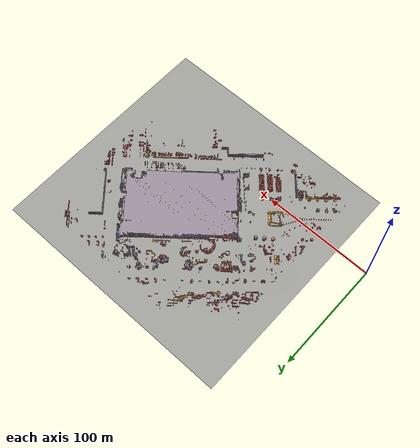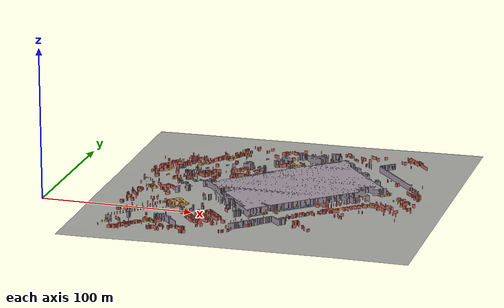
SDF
<sdf version="1.9">
 <world name="tsukuba_kakunin">
  <physics name="1ms" type="ignored">
   <max_step_size>0.001</max_step_size>
   <real_time_factor>1.0</real_time_factor>
   <gravity>0 0 -9.8</gravity>
  </physics>
  <plugin filename="libignition-gazebo-physics-system.so" name="ignition::gazebo::systems::Physics"/>
  <plugin filename="libignition-gazebo-user-commands-system.so" name="ignition::gazebo::systems::UserCommands"/>
  <plugin filename="libignition-gazebo-scene-broadcaster-system.so" name="ignition::gazebo::systems::SceneBroadcaster"/>
  <plugin filename="libignition-gazebo-sensors-system.so" name="ignition::gazebo::systems::Sensors">
   <render_engine>ogre2</render_engine>
  </plugin>
  <plugin filename="libignition-gazebo-imu-system.so" name="ignition::gazebo::systems::Imu"/>
  <plugin filename="ignition-gazebo-navsat-system" name="ignition::gazebo::systems::NavSat"/>
  <scene>
   <ambient>1 1 1 1</ambient>
   <background>0.3 0.7 0.9 1</background>
   <shadows>0</shadows>
   <grid>false</grid>
  </scene>
  <light type="directional" name="sun">
   <cast_shadows>0</cast_shadows>
   <pose>0 0 10 0 0 0</pose>
   <diffuse>0.8 0.8 0.8 1</diffuse>
   <specular>0.2 0.2 0.2 1</specular>
   <attenuation>
    <range>1000</range>
    <constant>0.9</constant>
    <linear>0.01</linear>
    <quadratic>0.001</quadratic>
   </attenuation>
   <direction>-0.5 0.1 -0.9</direction>
  </light>
  <include><uri>model://tsukuba_kakunin</uri></include>
  <gravity>0 0 -9.8000000000000007</gravity>
  <magnetic_field>6.0000000000000002e-06 2.3e-05 -4.1999999999999998e-05</magnetic_field>
  <atmosphere type="adiabatic"/>
  <spherical_coordinates>
   <surface_model>EARTH_WGS84</surface_model>
   <world_frame_orientation>ENU</world_frame_orientation>
   <latitude_deg>36.082877536</latitude_deg>
   <longitude_deg>140.078040399</longitude_deg>
   <elevation>65.563</elevation>
   <heading_deg>134.7000</heading_deg>
  </spherical_coordinates>
 </world>
</sdf>

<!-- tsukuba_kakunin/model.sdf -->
<sdf version="1.9">
  <model name="tsukuba_kakunin">
    <static>true</static>
    <link name="link">
      <collision name="terrain_collision">
        <geometry><mesh><uri>model://tsukuba_kakunin/meshes/terrain.obj</uri></mesh></geometry>
      </collision>
      <visual name="terrain_visual">
        <geometry><mesh><uri>model://tsukuba_kakunin/meshes/terrain.obj</uri></mesh></geometry>
        <material>
          <ambient>0.62 0.62 0.60 1</ambient>
          <diffuse>0.62 0.62 0.60 1</diffuse>
          <specular>0.05 0.05 0.05 1</specular>
        </material>
      </visual>
      <collision name="obstacles_030cm_collision">
        <geometry><mesh><uri>model://tsukuba_kakunin/meshes/obstacles_030cm.obj</uri></mesh></geometry>
      </collision>
      <visual name="obstacles_030cm_visual">
        <geometry><mesh><uri>model://tsukuba_kakunin/meshes/obstacles_030cm.obj</uri></mesh></geometry>
        <material>
          <ambient>0.55 0.75 0.45 1</ambient>
          <diffuse>0.55 0.75 0.45 1</diffuse>
          <specular>0.05 0.05 0.05 1</specular>
        </material>
      </visual>
      <collision name="obstacles_060cm_collision">
        <geometry><mesh><uri>model://tsukuba_kakunin/meshes/obstacles_060cm.obj</uri></mesh></geometry>
      </collision>
      <visual name="obstacles_060cm_visual">
        <geometry><mesh><uri>model://tsukuba_kakunin/meshes/obstacles_060cm.obj</uri></mesh></geometry>
        <material>
          <ambient>0.45 0.60 0.85 1</ambient>
          <diffuse>0.45 0.60 0.85 1</diffuse>
          <specular>0.05 0.05 0.05 1</specular>
        </material>
      </visual>
      <collision name="obstacles_100cm_collision">
        <geometry><mesh><uri>model://tsukuba_kakunin/meshes/obstacles_100cm.obj</uri></mesh></geometry>
      </collision>
      <visual name="obstacles_100cm_visual">
        <geometry><mesh><uri>model://tsukuba_kakunin/meshes/obstacles_100cm.obj</uri></mesh></geometry>
        <material>
          <ambient>0.95 0.70 0.30 1</ambient>
          <diffuse>0.95 0.70 0.30 1</diffuse>
          <specular>0.05 0.05 0.05 1</specular>
        </material>
      </visual>
      <collision name="obstacles_200cm_collision">
        <geometry><mesh><uri>model://tsukuba_kakunin/meshes/obstacles_200cm.obj</uri></mesh></geometry>
      </collision>
      <visual name="obstacles_200cm_visual">
        <geometry><mesh><uri>model://tsukuba_kakunin/meshes/obstacles_200cm.obj</uri></mesh></geometry>
        <material>
          <ambient>0.80 0.40 0.35 1</ambient>
          <diffuse>0.80 0.40 0.35 1</diffuse>
          <specular>0.05 0.05 0.05 1</specular>
        </material>
      </visual>
      <collision name="obstacles_400cm_collision">
        <geometry><mesh><uri>model://tsukuba_kakunin/meshes/obstacles_400cm.obj</uri></mesh></geometry>
      </collision>
      <visual name="obstacles_400cm_visual">
        <geometry><mesh><uri>model://tsukuba_kakunin/meshes/obstacles_400cm.obj</uri></mesh></geometry>
        <material>
          <ambient>0.60 0.55 0.60 1</ambient>
          <diffuse>0.60 0.55 0.60 1</diffuse>
          <specular>0.05 0.05 0.05 1</specular>
        </material>
      </visual>
      <visual name="grass_visual">
        <geometry><mesh><uri>model://tsukuba_kakunin/meshes/grass.obj</uri></mesh></geometry>
        <material>
          <ambient>0.35 0.65 0.30 1</ambient>
          <diffuse>0.35 0.65 0.30 1</diffuse>
          <specular>0.05 0.05 0.05 1</specular>
        </material>
      </visual>
    </link>
  </model>
</sdf>
